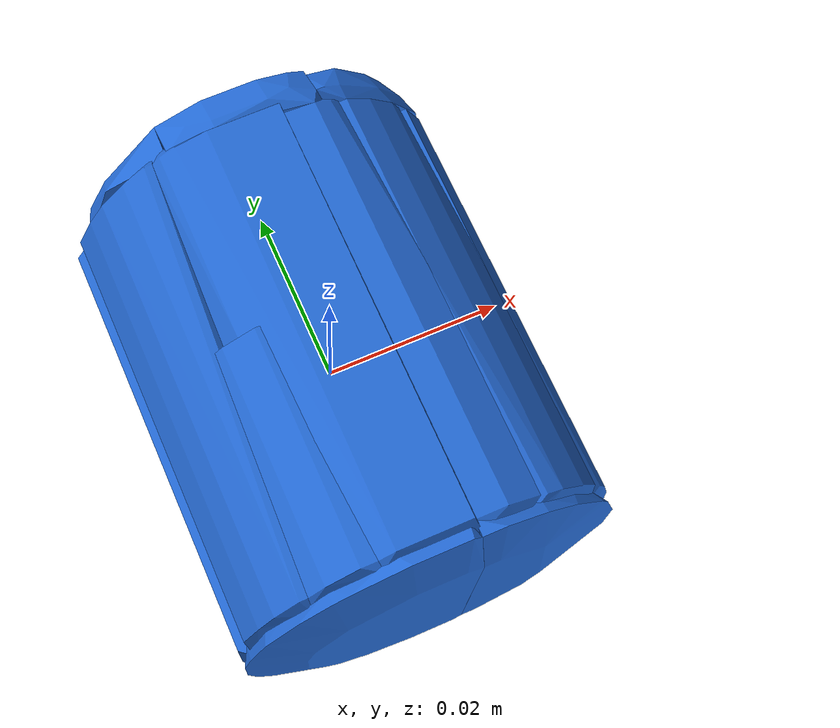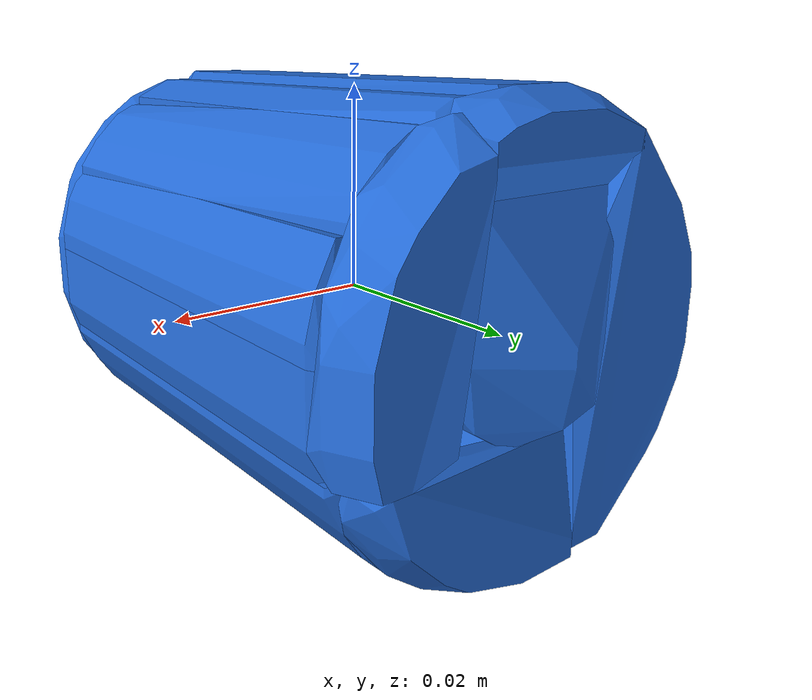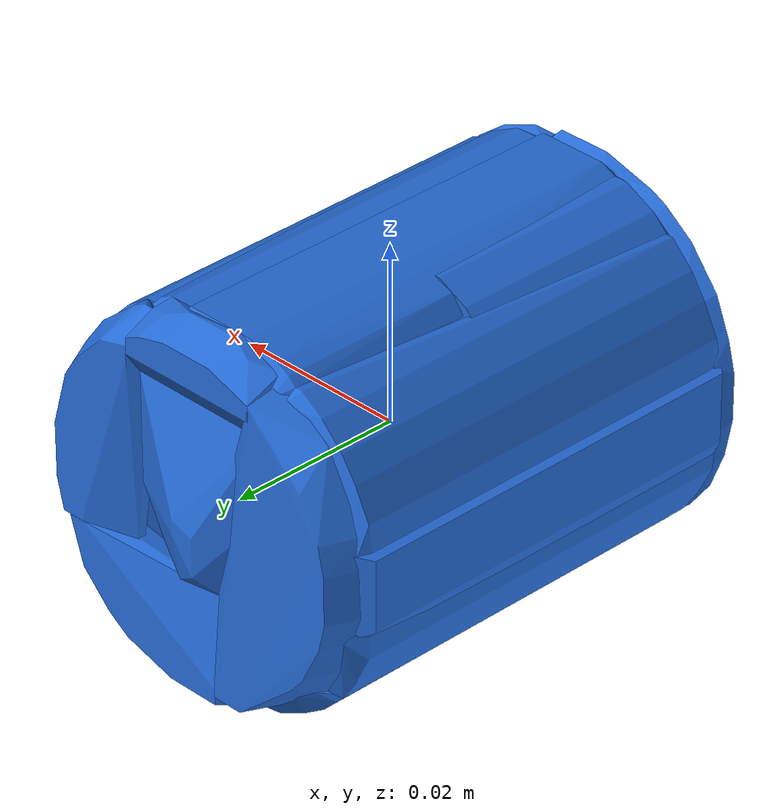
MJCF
<mujoco model="shapenet13-0">
  <asset>
    <mesh file="meshes/shapenet13-0/shapenet13-0_0.stl" name="shapenet13-0_0" scale="0.08 0.08 0.08"/>
    <mesh file="meshes/shapenet13-0/shapenet13-0_1.stl" name="shapenet13-0_1" scale="0.08 0.08 0.08"/>
    <mesh file="meshes/shapenet13-0/shapenet13-0_2.stl" name="shapenet13-0_2" scale="0.08 0.08 0.08"/>
    <mesh file="meshes/shapenet13-0/shapenet13-0_3.stl" name="shapenet13-0_3" scale="0.08 0.08 0.08"/>
    <mesh file="meshes/shapenet13-0/shapenet13-0_4.stl" name="shapenet13-0_4" scale="0.08 0.08 0.08"/>
    <mesh file="meshes/shapenet13-0/shapenet13-0_5.stl" name="shapenet13-0_5" scale="0.08 0.08 0.08"/>
    <mesh file="meshes/shapenet13-0/shapenet13-0_6.stl" name="shapenet13-0_6" scale="0.08 0.08 0.08"/>
    <mesh file="meshes/shapenet13-0/shapenet13-0_7.stl" name="shapenet13-0_7" scale="0.08 0.08 0.08"/>
    <mesh file="meshes/shapenet13-0/shapenet13-0_8.stl" name="shapenet13-0_8" scale="0.08 0.08 0.08"/>
    <mesh file="meshes/shapenet13-0/shapenet13-0_9.stl" name="shapenet13-0_9" scale="0.08 0.08 0.08"/>
    <mesh file="meshes/shapenet13-0/shapenet13-0_10.stl" name="shapenet13-0_10" scale="0.08 0.08 0.08"/>
    <mesh file="meshes/shapenet13-0/shapenet13-0_11.stl" name="shapenet13-0_11" scale="0.08 0.08 0.08"/>
    <mesh file="meshes/shapenet13-0/shapenet13-0_12.stl" name="shapenet13-0_12" scale="0.08 0.08 0.08"/>
    <mesh file="meshes/shapenet13-0/shapenet13-0_13.stl" name="shapenet13-0_13" scale="0.08 0.08 0.08"/>
    <mesh file="meshes/shapenet13-0/shapenet13-0_14.stl" name="shapenet13-0_14" scale="0.08 0.08 0.08"/>
    <mesh file="meshes/shapenet13-0/shapenet13-0_15.stl" name="shapenet13-0_15" scale="0.08 0.08 0.08"/>
    <mesh file="meshes/shapenet13-0/shapenet13-0_16.stl" name="shapenet13-0_16" scale="0.08 0.08 0.08"/>
    <mesh file="meshes/shapenet13-0/shapenet13-0_17.stl" name="shapenet13-0_17" scale="0.08 0.08 0.08"/>
    <mesh file="meshes/shapenet13-0/shapenet13-0_18.stl" name="shapenet13-0_18" scale="0.08 0.08 0.08"/>
    <mesh file="meshes/shapenet13-0/shapenet13-0_19.stl" name="shapenet13-0_19" scale="0.08 0.08 0.08"/>
  </asset>
  <worldbody>
    <body>
      <body name="collision">
        <geom pos="0 0 0" mesh="shapenet13-0_0" type="mesh" solimp="0.998 0.998 0.001" solref="0.001 1" density="100" friction="0.95 0.3 0.1" rgba="0.145 0.423 0.847 1" group="1" condim="4"/>
        <geom pos="0 0 0" mesh="shapenet13-0_1" type="mesh" solimp="0.998 0.998 0.001" solref="0.001 1" density="100" friction="0.95 0.3 0.1" rgba="0.145 0.423 0.847 1" group="1" condim="4"/>
        <geom pos="0 0 0" mesh="shapenet13-0_2" type="mesh" solimp="0.998 0.998 0.001" solref="0.001 1" density="100" friction="0.95 0.3 0.1" rgba="0.145 0.423 0.847 1" group="1" condim="4"/>
        <geom pos="0 0 0" mesh="shapenet13-0_3" type="mesh" solimp="0.998 0.998 0.001" solref="0.001 1" density="100" friction="0.95 0.3 0.1" rgba="0.145 0.423 0.847 1" group="1" condim="4"/>
        <geom pos="0 0 0" mesh="shapenet13-0_4" type="mesh" solimp="0.998 0.998 0.001" solref="0.001 1" density="100" friction="0.95 0.3 0.1" rgba="0.145 0.423 0.847 1" group="1" condim="4"/>
        <geom pos="0 0 0" mesh="shapenet13-0_5" type="mesh" solimp="0.998 0.998 0.001" solref="0.001 1" density="100" friction="0.95 0.3 0.1" rgba="0.145 0.423 0.847 1" group="1" condim="4"/>
        <geom pos="0 0 0" mesh="shapenet13-0_6" type="mesh" solimp="0.998 0.998 0.001" solref="0.001 1" density="100" friction="0.95 0.3 0.1" rgba="0.145 0.423 0.847 1" group="1" condim="4"/>
        <geom pos="0 0 0" mesh="shapenet13-0_7" type="mesh" solimp="0.998 0.998 0.001" solref="0.001 1" density="100" friction="0.95 0.3 0.1" rgba="0.145 0.423 0.847 1" group="1" condim="4"/>
        <geom pos="0 0 0" mesh="shapenet13-0_8" type="mesh" solimp="0.998 0.998 0.001" solref="0.001 1" density="100" friction="0.95 0.3 0.1" rgba="0.145 0.423 0.847 1" group="1" condim="4"/>
        <geom pos="0 0 0" mesh="shapenet13-0_9" type="mesh" solimp="0.998 0.998 0.001" solref="0.001 1" density="100" friction="0.95 0.3 0.1" rgba="0.145 0.423 0.847 1" group="1" condim="4"/>
        <geom pos="0 0 0" mesh="shapenet13-0_10" type="mesh" solimp="0.998 0.998 0.001" solref="0.001 1" density="100" friction="0.95 0.3 0.1" rgba="0.145 0.423 0.847 1" group="1" condim="4"/>
        <geom pos="0 0 0" mesh="shapenet13-0_11" type="mesh" solimp="0.998 0.998 0.001" solref="0.001 1" density="100" friction="0.95 0.3 0.1" rgba="0.145 0.423 0.847 1" group="1" condim="4"/>
        <geom pos="0 0 0" mesh="shapenet13-0_12" type="mesh" solimp="0.998 0.998 0.001" solref="0.001 1" density="100" friction="0.95 0.3 0.1" rgba="0.145 0.423 0.847 1" group="1" condim="4"/>
        <geom pos="0 0 0" mesh="shapenet13-0_13" type="mesh" solimp="0.998 0.998 0.001" solref="0.001 1" density="100" friction="0.95 0.3 0.1" rgba="0.145 0.423 0.847 1" group="1" condim="4"/>
        <geom pos="0 0 0" mesh="shapenet13-0_14" type="mesh" solimp="0.998 0.998 0.001" solref="0.001 1" density="100" friction="0.95 0.3 0.1" rgba="0.145 0.423 0.847 1" group="1" condim="4"/>
        <geom pos="0 0 0" mesh="shapenet13-0_15" type="mesh" solimp="0.998 0.998 0.001" solref="0.001 1" density="100" friction="0.95 0.3 0.1" rgba="0.145 0.423 0.847 1" group="1" condim="4"/>
        <geom pos="0 0 0" mesh="shapenet13-0_16" type="mesh" solimp="0.998 0.998 0.001" solref="0.001 1" density="100" friction="0.95 0.3 0.1" rgba="0.145 0.423 0.847 1" group="1" condim="4"/>
        <geom pos="0 0 0" mesh="shapenet13-0_17" type="mesh" solimp="0.998 0.998 0.001" solref="0.001 1" density="100" friction="0.95 0.3 0.1" rgba="0.145 0.423 0.847 1" group="1" condim="4"/>
        <geom pos="0 0 0" mesh="shapenet13-0_18" type="mesh" solimp="0.998 0.998 0.001" solref="0.001 1" density="100" friction="0.95 0.3 0.1" rgba="0.145 0.423 0.847 1" group="1" condim="4"/>
        <geom pos="0 0 0" mesh="shapenet13-0_19" type="mesh" solimp="0.998 0.998 0.001" solref="0.001 1" density="100" friction="0.95 0.3 0.1" rgba="0.145 0.423 0.847 1" group="1" condim="4"/>
      </body>
      <body name="visual">
        <geom pos="0 0 0" mesh="shapenet13-0_0" type="mesh" rgba="0.145 0.423 0.847 1" conaffinity="0" contype="0" group="0" mass="0.0001"/>
        <geom pos="0 0 0" mesh="shapenet13-0_1" type="mesh" rgba="0.145 0.423 0.847 1" conaffinity="0" contype="0" group="0" mass="0.0001"/>
        <geom pos="0 0 0" mesh="shapenet13-0_2" type="mesh" rgba="0.145 0.423 0.847 1" conaffinity="0" contype="0" group="0" mass="0.0001"/>
        <geom pos="0 0 0" mesh="shapenet13-0_3" type="mesh" rgba="0.145 0.423 0.847 1" conaffinity="0" contype="0" group="0" mass="0.0001"/>
        <geom pos="0 0 0" mesh="shapenet13-0_4" type="mesh" rgba="0.145 0.423 0.847 1" conaffinity="0" contype="0" group="0" mass="0.0001"/>
        <geom pos="0 0 0" mesh="shapenet13-0_5" type="mesh" rgba="0.145 0.423 0.847 1" conaffinity="0" contype="0" group="0" mass="0.0001"/>
        <geom pos="0 0 0" mesh="shapenet13-0_6" type="mesh" rgba="0.145 0.423 0.847 1" conaffinity="0" contype="0" group="0" mass="0.0001"/>
        <geom pos="0 0 0" mesh="shapenet13-0_7" type="mesh" rgba="0.145 0.423 0.847 1" conaffinity="0" contype="0" group="0" mass="0.0001"/>
        <geom pos="0 0 0" mesh="shapenet13-0_8" type="mesh" rgba="0.145 0.423 0.847 1" conaffinity="0" contype="0" group="0" mass="0.0001"/>
        <geom pos="0 0 0" mesh="shapenet13-0_9" type="mesh" rgba="0.145 0.423 0.847 1" conaffinity="0" contype="0" group="0" mass="0.0001"/>
        <geom pos="0 0 0" mesh="shapenet13-0_10" type="mesh" rgba="0.145 0.423 0.847 1" conaffinity="0" contype="0" group="0" mass="0.0001"/>
        <geom pos="0 0 0" mesh="shapenet13-0_11" type="mesh" rgba="0.145 0.423 0.847 1" conaffinity="0" contype="0" group="0" mass="0.0001"/>
        <geom pos="0 0 0" mesh="shapenet13-0_12" type="mesh" rgba="0.145 0.423 0.847 1" conaffinity="0" contype="0" group="0" mass="0.0001"/>
        <geom pos="0 0 0" mesh="shapenet13-0_13" type="mesh" rgba="0.145 0.423 0.847 1" conaffinity="0" contype="0" group="0" mass="0.0001"/>
        <geom pos="0 0 0" mesh="shapenet13-0_14" type="mesh" rgba="0.145 0.423 0.847 1" conaffinity="0" contype="0" group="0" mass="0.0001"/>
        <geom pos="0 0 0" mesh="shapenet13-0_15" type="mesh" rgba="0.145 0.423 0.847 1" conaffinity="0" contype="0" group="0" mass="0.0001"/>
        <geom pos="0 0 0" mesh="shapenet13-0_16" type="mesh" rgba="0.145 0.423 0.847 1" conaffinity="0" contype="0" group="0" mass="0.0001"/>
        <geom pos="0 0 0" mesh="shapenet13-0_17" type="mesh" rgba="0.145 0.423 0.847 1" conaffinity="0" contype="0" group="0" mass="0.0001"/>
        <geom pos="0 0 0" mesh="shapenet13-0_18" type="mesh" rgba="0.145 0.423 0.847 1" conaffinity="0" contype="0" group="0" mass="0.0001"/>
        <geom pos="0 0 0" mesh="shapenet13-0_19" type="mesh" rgba="0.145 0.423 0.847 1" conaffinity="0" contype="0" group="0" mass="0.0001"/>
      </body>
      <site rgba="0 0 0 0" size="0.005" pos="0 0 -0.06" name="bottom_site"/>
      <site rgba="0 0 0 0" size="0.005" pos="0 0 0.04" name="top_site"/>
      <site rgba="0 0 0 0" size="0.005" pos="0.025 0.025 0" name="horizontal_radius_site"/>
    </body>
  </worldbody>
</mujoco>
